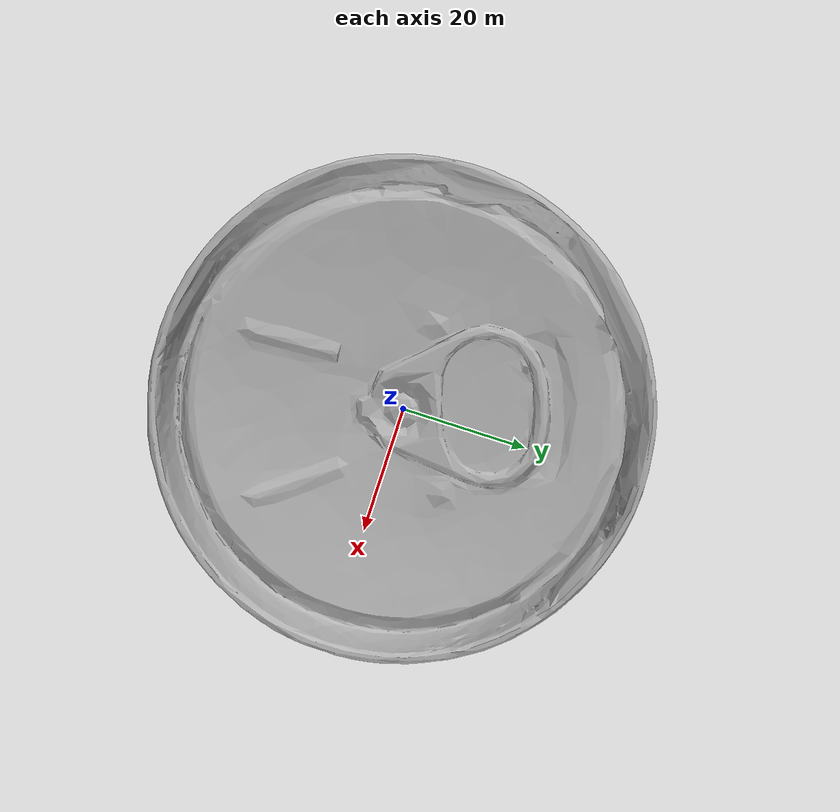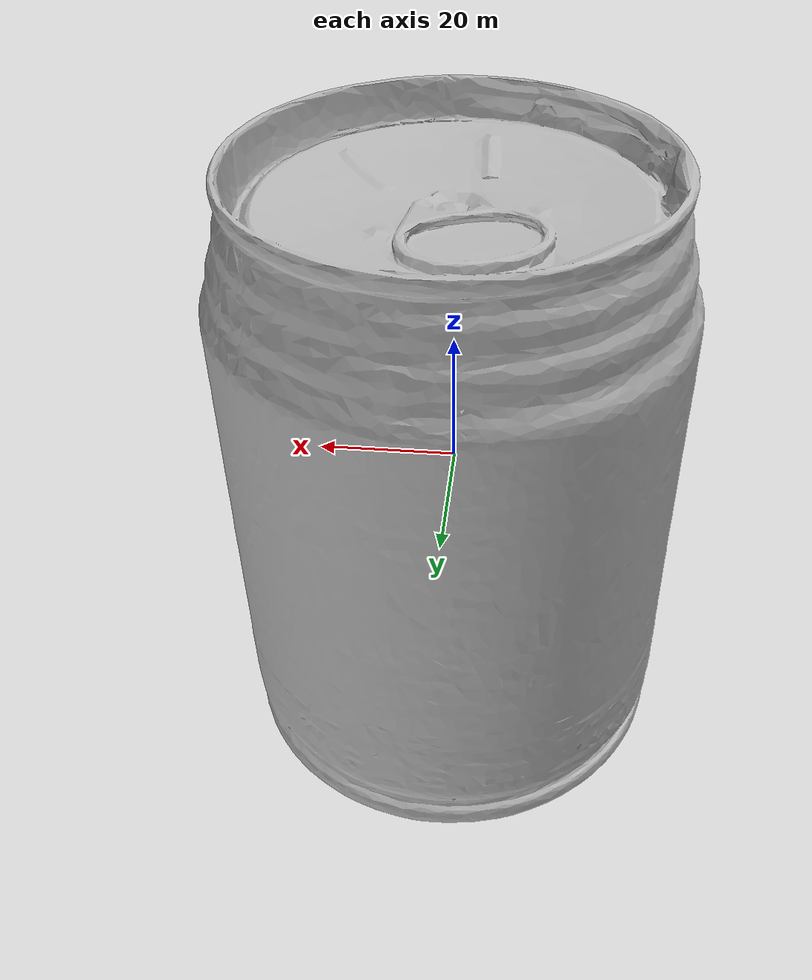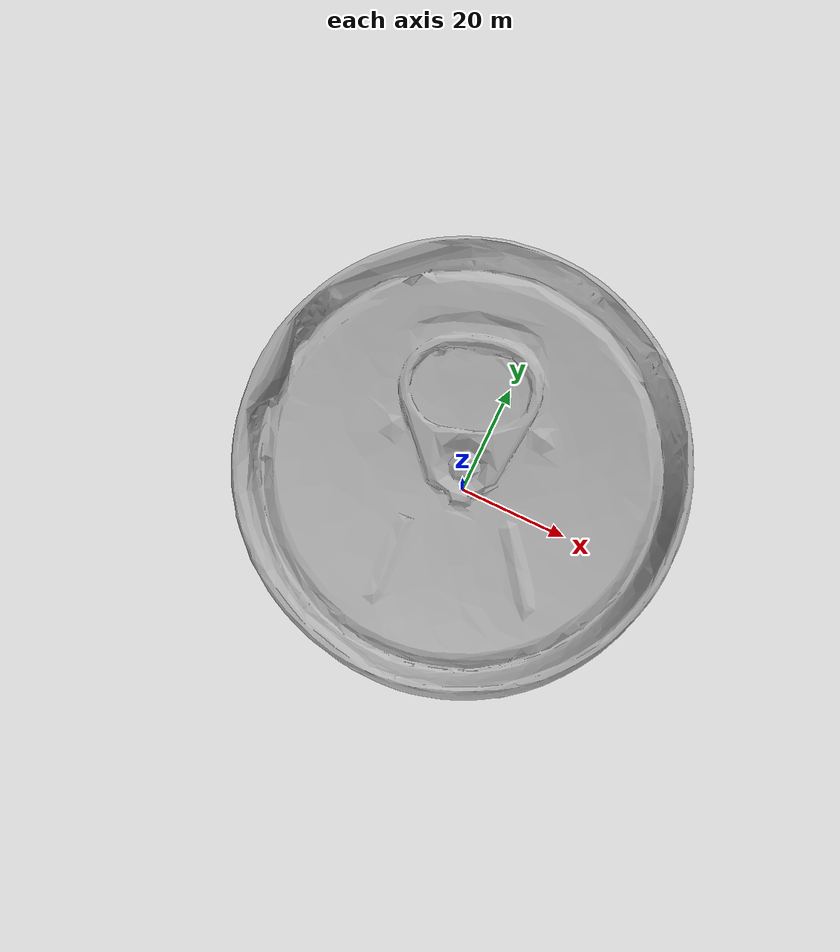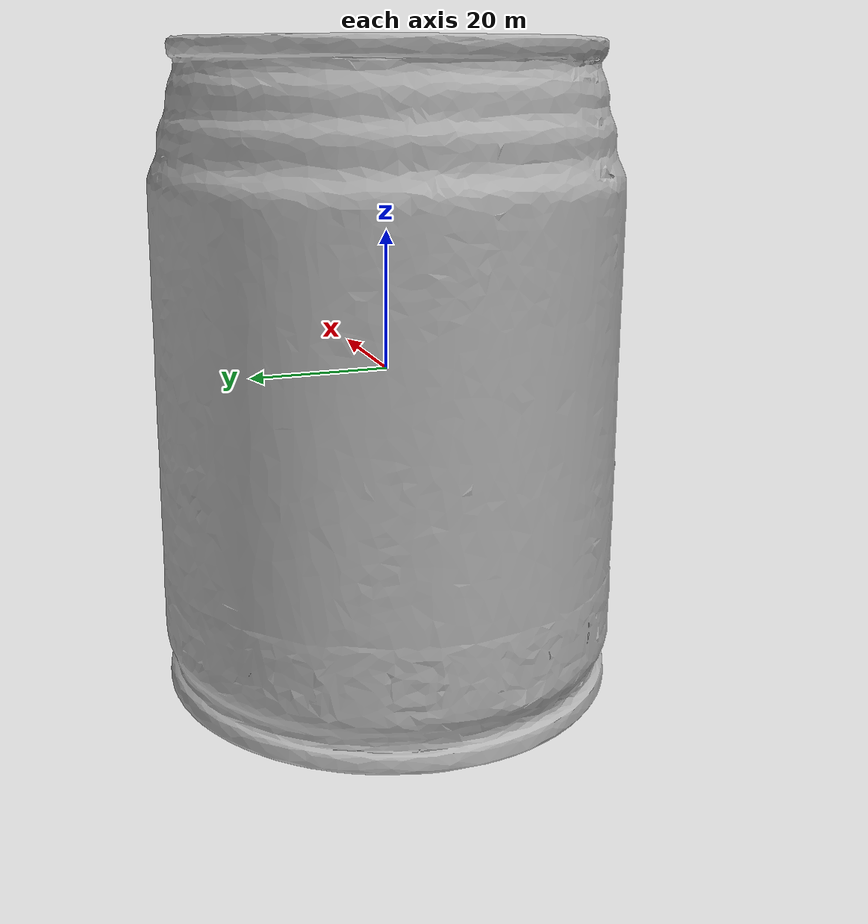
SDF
<sdf version="1.4">
 <world name="default">
  <light name="light1" type="point">
   <pose>0 0 1 0 0 0</pose>
   <diffuse>3 3 3 1</diffuse>
   <specular>3 3 3 1</specular>
  </light>
  <light name="light2" type="point">
   <pose>0 0.5 2 0 0 0</pose>
   <diffuse>1 1 1 1</diffuse>
   <specular>1 1 1 1</specular>
  </light>
  <light name="light3" type="point">
   <pose>0 0.5 2 0 0 0</pose>
   <diffuse>3 3 3 1</diffuse>
   <specular>3 3 3 1</specular>
  </light>
  <scene><ambient>0.7 0.7 0.7</ambient></scene>
  <model name="box1">
   <link name="link_box1">
    <collision name="default">
     <geometry>
      <mesh><uri>model://wooden_puzzle1/collision_meshes/collision.obj</uri><scale>1.0 1.0 1.0</scale></mesh>
     </geometry>
     <surface>
      <friction><ode><mu>0.5</mu><mu2>0.5</mu2></ode></friction>
      <contact><ode><max_vel>0</max_vel><min_depth>0.0001</min_depth><kp>1e8</kp></ode></contact>
     </surface>
    </collision>
    <visual name="default">
     <geometry>
      <mesh><uri>model://wooden_puzzle1/visual_meshes/visual.dae</uri><scale>1.0 1.0 1.0</scale></mesh>
     </geometry>
    </visual>
    <inertial>
     <mass>0.025116289034485817</mass>
     <pose>-0.00017350679263472557 7.972260937094688e-05 -9.191555000143126e-05 -0.07784885804399136 -0.2636065522190298 -0.5528757227143044</pose>
     <inertia>
      <ixx>4.7387575e-06</ixx>
      <iyy>4.647534e-06</iyy>
      <izz>4.7029785e-06</izz>
      <ixy>0</ixy>
      <ixz>0</ixz>
      <iyz>0</iyz>
     </inertia>
    </inertial>
   </link>
   <pose>-0.08283339440822601 -0.38306236267089844 0.01680198311805725 0.010516079568283843 -0.009456503090996023 -0.005710865264252577</pose>
  </model>
  <model name="box3">
   <link name="link_box3">
    <collision name="default">
     <geometry>
      <mesh><uri>model://wooden_puzzle2/collision_meshes/collision.obj</uri><scale>1.0 1.0 1.0</scale></mesh>
     </geometry>
     <surface>
      <friction><ode><mu>0.5</mu><mu2>0.5</mu2></ode></friction>
      <contact><ode><max_vel>0</max_vel><min_depth>0.0001</min_depth><kp>1e8</kp></ode></contact>
     </surface>
    </collision>
    <visual name="default">
     <geometry>
      <mesh><uri>model://wooden_puzzle2/visual_meshes/visual.dae</uri><scale>1.0 1.0 1.0</scale></mesh>
     </geometry>
    </visual>
    <inertial>
     <mass>0.025376593694090843</mass>
     <pose>2.7402536943554878e-05 4.997663199901581e-05 6.587122334167361e-05 -0.1920355258808483 0.6112750807505014 -0.6338716229052327</pose>
     <inertia>
      <ixx>4.7172375e-06</ixx>
      <iyy>4.8472266e-06</iyy>
      <izz>4.778271e-06</izz>
      <ixy>0</ixy>
      <ixz>0</ixz>
      <iyz>0</iyz>
     </inertia>
    </inertial>
   </link>
   <pose>0.2828010618686676 0.38202401995658875 0.016917724162340164 0.020848644971351714 0.0007208756922271365 1.6149629878571494</pose>
  </model>
  <model name="can1">
   <link name="link_can1">
    <collision name="default">
     <geometry>
      <mesh><uri>model://redbull/collision_meshes/collision.obj</uri><scale>1.0 1.0 1.0</scale></mesh>
     </geometry>
     <surface>
      <friction><ode><mu>0.5</mu><mu2>0.5</mu2></ode></friction>
      <contact><ode><max_vel>0</max_vel><min_depth>0.0001</min_depth><kp>1e8</kp></ode></contact>
     </surface>
    </collision>
    <visual name="default">
     <geometry>
      <mesh><uri>model://redbull/visual_meshes/visual.dae</uri><scale>1.0 1.0 1.0</scale></mesh>
     </geometry>
    </visual>
    <inertial>
     <mass>0.2544018626213074</mass>
     <pose>-2.2126756448415108e-05 -0.0001265947794308886 -0.0006860987632535398 0.0011376600102847077 -0.01080087162846833 0.5858227764205248</pose>
     <inertia>
      <ixx>0.00023919248</ixx>
      <iyy>0.00023939437</iyy>
      <izz>0.00014194298</izz>
      <ixy>0</ixy>
      <ixz>0</ixz>
      <iyz>0</iyz>
     </inertia>
    </inertial>
   </link>
   <pose>0.1493101865053177 -0.3666552007198334 0.046385619789361954 -0.010489439299768076 0.007261328925455107 -2.3904593874781193</pose>
  </model>
  <model name="can2">
   <link name="link_can2">
    <collision name="default">
     <geometry>
      <mesh><uri>model://pepsi/collision_meshes/collision.obj</uri><scale>1.0 1.0 1.0</scale></mesh>
     </geometry>
     <surface>
      <friction><ode><mu>0.5</mu><mu2>0.5</mu2></ode></friction>
      <contact><ode><max_vel>0</max_vel><min_depth>0.0001</min_depth><kp>1e8</kp></ode></contact>
     </surface>
    </collision>
    <visual name="default">
     <geometry><mesh><uri>model://pepsi/visual_meshes/visual.dae</uri><scale>1.0 1.0 1.0</scale></mesh></geometry>
    </visual>
    <inertial>
     <mass>0.4552207291126251</mass>
     <pose>-7.5590331107378e-05 2.99312814604491e-05 -0.0003384356095921248 -0.0010679690801074441 -0.0021734768369219134 0.5674650232372158</pose>
     <inertia>
      <ixx>0.0009068869</ixx>
      <iyy>0.0009062263</iyy>
      <izz>0.00019301806</izz>
      <ixy>0</ixy>
      <ixz>0</ixz>
      <iyz>0</iyz>
     </inertia>
    </inertial>
   </link>
   <pose>0.1003902405500412 0.30718666315078735 0.07449633628129959 -1.86785927092069e-05 2.1730814973283774e-06 -0.3114836566410654</pose>
  </model>
  <physics type="ode">
   <max_contacts>50</max_contacts>
   <ode>
    <solver><type>quick</type><iters>75</iters></solver>
    <constraints>
     <contact_max_correcting_vel>0</contact_max_correcting_vel>
     <contact_surface_layer>0</contact_surface_layer>
    </constraints>
   </ode>
  </physics>
 </world>
</sdf>
